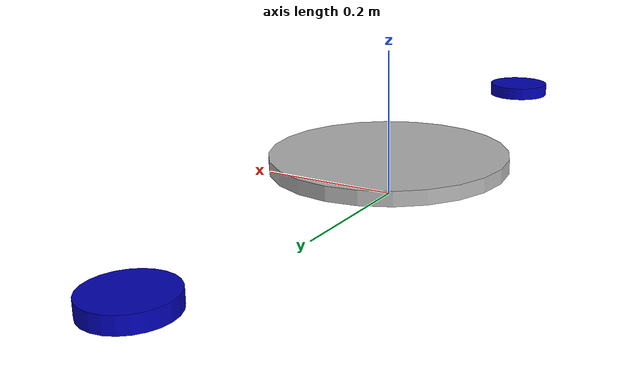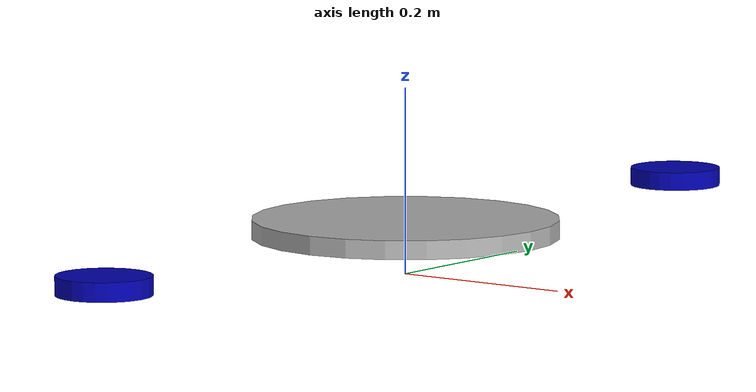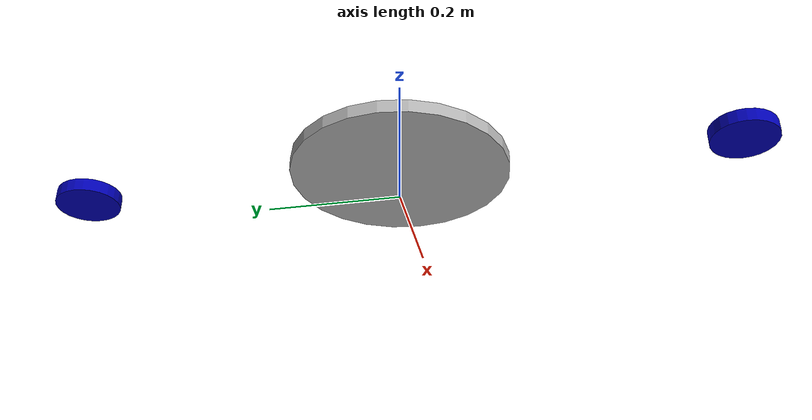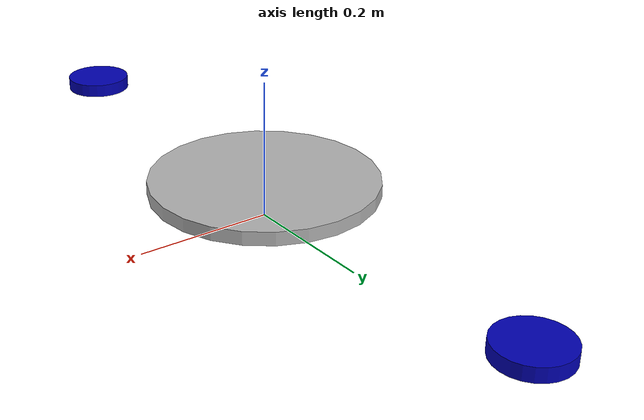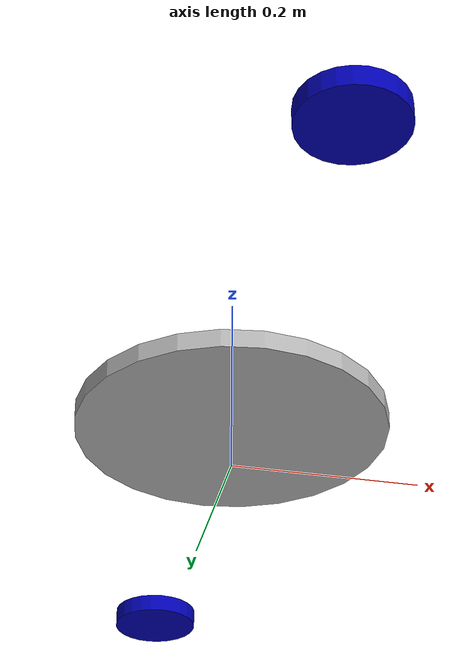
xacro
<robot xmlns:xacro="http://www.ros.org/wiki/xacro" name="robot" >

  <xacro:property name="M_PI" value="3.1415926535897931" />
  <xacro:property name="base_radius" value="0.165" />
  <xacro:property name="base_height" value="0.02" />
  <xacro:property name="wheel_radius" value="0.05" />
  <xacro:property name="wheel_height" value="0.02" />
  <xacro:property name="kinect_support_height" value="0.23" />

  <link name="base_footprint" />

  <joint name="base_footprint_joint" type="fixed">
    <parent link="base_footprint" />
    <child link="base_link" />
    <origin xyz="0 0 ${wheel_radius}" rpy="0 0 0" />
  </joint>

  <link name="base_link">
    <visual>
	  <origin xyz="0 0 0" rpy="0 0 0" />
      <geometry>
        <cylinder radius="${base_radius}" length="${base_height}" />
      </geometry>
	  <material name="grey">
        <color rgba="0.7 0.7 0.7 1.0"/>
      </material>
    </visual>
  </link>

  <joint name="left_wheel_joint" type="fixed">
    <parent link="base_link" />
    <child link="left_wheel" />
    <origin xyz="0 0.5 0" rpy="0 0 0" />
  </joint>

  <link name="left_wheel">
    <visual>
	  <origin xyz="0 0 0" rpy="0 0 0" />
      <geometry>
        <cylinder radius="${wheel_radius}" length="${wheel_height}" />
      </geometry>
	  <material name="blue">
        <color rgba="0 0 0.7 1.0"/>
      </material>
    </visual>
  </link>

  <joint name="right_wheel_joint" type="fixed">
    <parent link="base_link" />
    <child link="right_wheel" />
    <origin xyz="0 -0.5 0" rpy="0 0 0" />
  </joint>

  <link name="right_wheel">
    <visual>
	  <origin xyz="0 0 0" rpy="0 0 0" />
      <geometry>
        <cylinder radius="${wheel_radius}" length="${wheel_height}" />
      </geometry>
	  <material name="blue">
        <color rgba="0 0 0.7 1.0"/>
      </material>
    </visual>
  </link>

</robot>
